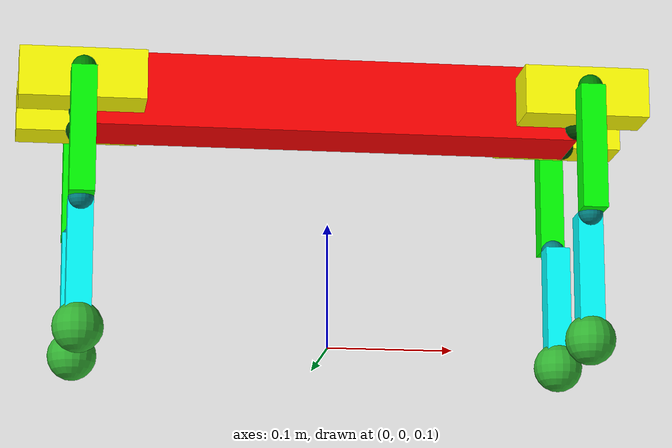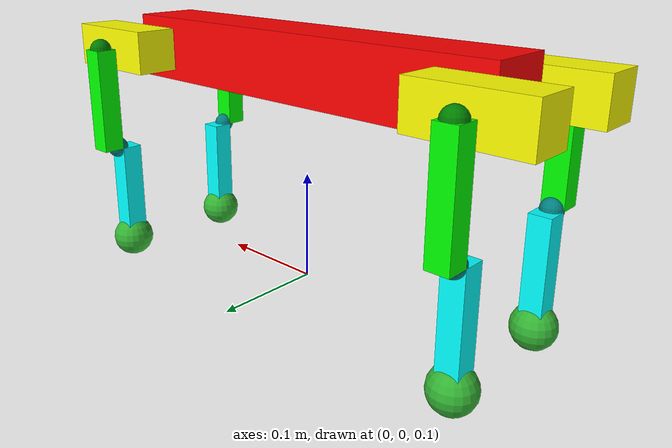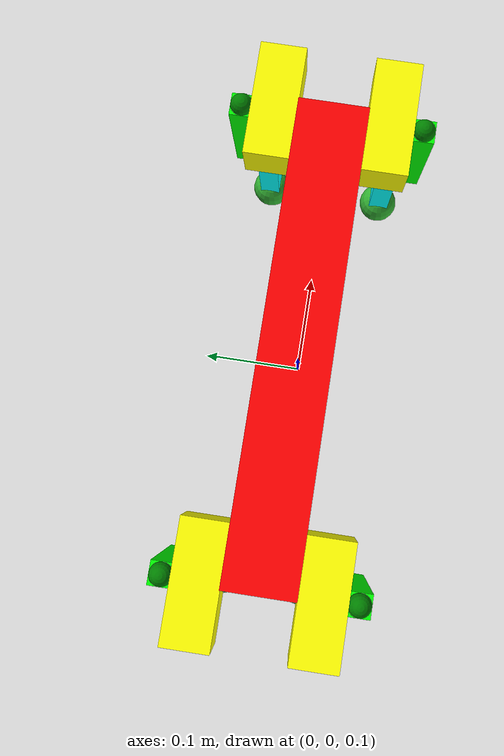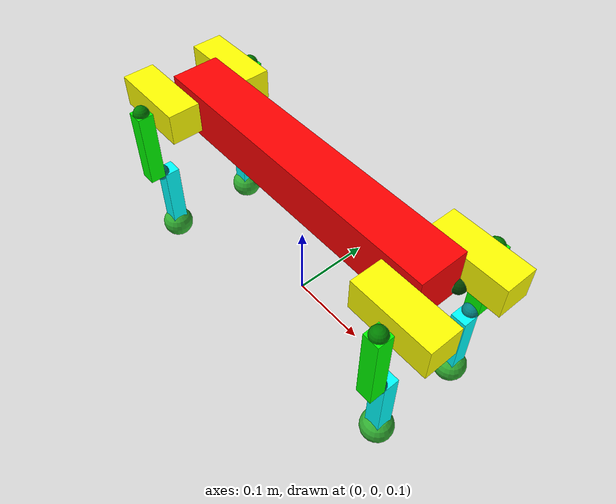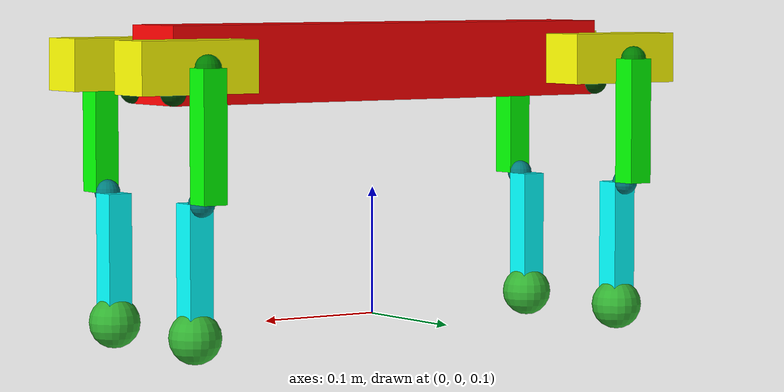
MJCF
<?xml version="1.0" encoding="UTF-8"?>
<mujoco model="snake">
    <compiler angle="degree" />
    <option timestep="0.001"
            gravity="0 0 -9.81" />
    <default>
        <equality solref="0.005 1" />
        <geom type="box"
              size="0.05 0.02 0.02"
              density="500"
              rgba="0.2 0.7 0.2 1" />
        <joint limited="true"
               range="-300 300"
               damping="0.2"
               stiffness="5" />
        <motor ctrllimited="true"
               ctrlrange="-3 3" />
    </default>
    <worldbody>
        <!-- Segment 0 (root body) -->
        <body name="body"
              pos="0 0 0.3">
            <freejoint name="root_free" />
            <geom name="body_geom"
                  type="box"
                  size="0.2 0.03 0.03"
                  pos="0 0 0"
                  rgba="1 0 0 1" />
            <!-- Left Front Shoulder -->
            <body name="shoulder_lf"
                  pos="-0.2 -0.05 0">
                <joint name="lf_upper_shoulder"
                       type="hinge"
                       axis="1 0 0"
                       pos="0 0.02 -0.02" />
                  <site name="u_shoulder_joint_lf"
                          pos="0 0.02 -0.02"
                          size="0.01"
                          rgba="0 0.25 0 1" />
                <geom name="shoulder_lf_geom"
                      type="box"
                      size="0.05 0.02 0.02"
                      pos="0 0 0"
                      rgba="1 1 0 1" />
                <!-- Left Front Upper Leg -->
                <body name="upper_leg_lf"
                      pos="0 -0.03 -0.05">
                    <joint name="lf_lower_shoulder"
                           type="hinge"
                           axis="0 1 0"
                           pos="0 0 0.05" />
                    <site name="shoulder_joint_lf"
                          pos="0 0 0.05"
                          size="0.01"
                          rgba="0 0.5 0 1" />
                    <geom name="upper_leg_lf_geom"
                          type="box"
                          size="0.01 0.01 0.05"
                          pos="0 0 0"
                          rgba="0 1 0 1" />
                    <!-- Left Front Lower Leg -->
                    <body name="lower_leg_lf"
                          pos="0 0.02 -0.10">
                        <joint name="lf_knee"
                               type="hinge"
                               axis="0 1 0"
                               pos="0 -0.01 0.05" />
                        <site name="knee_joint_lf"
                              pos="0 -0.01 0.05"
                              size="0.01"
                              rgba="0 0.5 0.5 1" />
                        <geom name="lower_leg_lf_geom"
                              type="box"
                              size="0.01 0.01 0.05"
                              pos="0 0 0"
                              rgba="0 1 1 1" />
                        <!-- Left front Foot -->
                        <body name="foot_lf"
                              pos="0 0 -0.05">
                            <geom name="foot_lf_geom"
                                  type="sphere"
                                  size="0.02"
                                  pos="0 0 0" />
                        </body>
                    </body>
                </body>
            </body>

            <!-- Right Front Shoulder -->
            <body name="shoulder_rf"
                  pos="-0.2 0.05 0">
                <joint name="rf_upper_shoulder"
                       type="hinge"
                       axis="1 0 0"
                       pos="0 -0.02 -0.02" />
                  <site name="u_shoulder_joint_rf"
                          pos="0 -0.02 -0.02"
                          size="0.01"
                          rgba="0 0.25 0 1" />
                <geom name="shoulder_rf_geom"
                      type="box"
                      size="0.05 0.02 0.02"
                      pos="0 0 0"
                      rgba="1 1 0 1" />
                <!-- Right Front Upper Leg -->
                <body name="upper_leg_rf"
                      pos="0 0.03 -0.05">
                    <joint name="rf_lower_shoulder"
                           type="hinge"
                           axis="0 1 0"
                           pos="0 0 0.05" />
                    <site name="shoulder_joint_rf"
                          pos="0 0 0.05"
                          size="0.01"
                          rgba="0 0.5 0 1" />
                    <geom name="upper_leg_rf_geom"
                          type="box"
                          size="0.01 0.01 0.05"
                          pos="0 0 0"
                          rgba="0 1 0 1" />
                    <!-- Right Front Lower Leg -->
                    <body name="lower_leg_rf"
                          pos="0 -0.02 -0.10">
                        <joint name="rf_knee"
                               type="hinge"
                               axis="0 1 0"
                               pos="0 0.01 0.05" />
                        <site name="knee_joint_rf"
                              pos="0 0.01 0.05"
                              size="0.01"
                              rgba="0 0.5 0.5 1" />
                        <geom name="lower_leg_rf_geom"
                              type="box"
                              size="0.01 0.01 0.05"
                              pos="0 0 0"
                              rgba="0 1 1 1" />
                        <!-- Right Front Foot -->
                        <body name="foot_rf"
                              pos="0 0 -0.05">
                            <geom name="foot_rf_geom"
                                  type="sphere"
                                  size="0.02"
                                  pos="0 0 0" />
                        </body>
                    </body>
                </body>
            </body>

            <!-- Left Back Shoulder -->
            <body name="shoulder_lb"
                  pos="0.2 -0.05 0">
                <joint name="lb_upper_shoulder"
                       type="hinge"
                       axis="1 0 0"
                       pos="0 0.02 -0.02" />
                  <site name="u_shoulder_joint_lb"
                          pos="0 0.02 -0.02"
                          size="0.01"
                          rgba="0 0.25 0 1" />
                <geom name="shoulder_lb_geom"
                      type="box"
                      size="0.05 0.02 0.02"
                      pos="0 0 0"
                      rgba="1 1 0 1" />
                <!-- Left Back Upper Leg -->
                <body name="upper_leg_lb"
                      pos="0 -0.03 -0.05">
                    <joint name="lb_lower_shoulder"
                           type="hinge"
                           axis="0 1 0"
                           pos="0 0 0.05" />
                    <site name="shoulder_joint_lb"
                          pos="0 0 0.05"
                          size="0.01"
                          rgba="0 0.5 0 1" />
                    <geom name="upper_leg_lb_geom"
                          type="box"
                          size="0.01 0.01 0.05"
                          pos="0 0 0"
                          rgba="0 1 0 1" />
                    <!-- Left Back Lower Leg -->
                    <body name="lower_leg_lb"
                          pos="0 0.02 -0.10">
                        <joint name="lb_knee"
                               type="hinge"
                               axis="0 1 0"
                               pos="0 -0.01 0.05" />
                        <site name="knee_joint_lb"
                              pos="0 -0.01 0.05"
                              size="0.01"
                              rgba="0 0.5 0.5 1" />
                        <geom name="lower_leg_lb_geom"
                              type="box"
                              size="0.01 0.01 0.05"
                              pos="0 0 0"
                              rgba="0 1 1 1" />
                        <!-- Left Back Foot -->
                        <body name="foot_lb"
                              pos="0 0 -0.05">
                            <geom name="foot_lb_geom"
                                  type="sphere"
                                  size="0.02"
                                  pos="0 0 0" />
                        </body>
                    </body>
                </body>
            </body>

            <!-- Right Back Shoulder -->
            <body name="shoulder_rb"
                  pos="0.2 0.05 0">
                  <joint name="rb_upper_shoulder"
                       type="hinge"
                       axis="1 0 0"
                       pos="0 -0.02 -0.02" />
                  <site name="u_shoulder_joint_rb"
                          pos="0 -0.02 -0.02"
                          size="0.01"
                          rgba="0 0.25 0 1" />
                <geom name="shoulder_rb_geom"
                      type="box"
                      size="0.05 0.02 0.02"
                      pos="0 0 0"
                      rgba="1 1 0 1" />
                <!-- Right Back Upper Leg -->
                <body name="upper_leg_rb"
                      pos="0 0.03 -0.05">
                    <joint name="rb_lower_shoulder"
                           type="hinge"
                           axis="0 1 0"
                           pos="0 0 0.05" />
                    <site name="shoulder_joint_rb"
                          pos="0 0 0.05"
                          size="0.01"
                          rgba="0 0.5 0 1" />
                    <geom name="upper_leg_rb_geom"
                          type="box"
                          size="0.01 0.01 0.05"
                          pos="0 0 0"
                          rgba="0 1 0 1" />
                    <!-- Right Back Lower Leg -->
                    <body name="lower_leg_rb"
                          pos="0 -0.02 -0.10">
                        <joint name="rb_knee"
                               type="hinge"
                               axis="0 1 0"
                               pos="0 0.01 0.05" />
                        <site name="knee_joint_rb"
                              pos="0 0.01 0.05"
                              size="0.01"
                              rgba="0 0.5 0.5 1" />
                        <geom name="lower_leg_rb_geom"
                              type="box"
                              size="0.01 0.01 0.05"
                              pos="0 0 0"
                              rgba="0 1 1 1" />
                        <!-- Right Back Foot -->
                        <body name="foot_rb"
                              pos="0 0 -0.05">
                            <geom name="foot_rb_geom"
                                  type="sphere"
                                  size="0.02"
                                  pos="0 0 0" />
                        </body>
                    </body>
                </body>
            </body>
        </body>
    </worldbody>

    <actuator>
        <!-- Left Front -->
      <motor name="lf_u_shoulder_motor"
               joint="lf_upper_shoulder"
               forcerange="-20 20" />
        <motor name="lf_l_shoulder_motor"
               joint="lf_lower_shoulder"
               forcerange="-20 20" />
        <motor name="lf_knee_motor"
               joint="lf_knee"
               forcerange="-20 20" />
        <!-- Right Front -->
      <motor name="rf_u_shoulder_motor"
               joint="rf_upper_shoulder"
               forcerange="-20 20" />
        <motor name="rf_l_shoulder_motor"
               joint="rf_lower_shoulder"
               forcerange="-20 20" />
        <motor name="rf_knee_motor"
               joint="rf_knee"
               forcerange="-20 20" />
        <!-- Left Back -->
              <motor name="lb_u_shoulder_motor"
               joint="lb_upper_shoulder"
               forcerange="-20 20" />
        <motor name="lb_l_shoulder_motor"
               joint="lb_lower_shoulder"
               forcerange="-20 20" />
        <motor name="lb_knee_motor"
               joint="lb_knee"
               forcerange="-20 20" />
        <!-- Right Back -->
              <motor name="rb_u_shoulder_motor"
               joint="rb_upper_shoulder"
               forcerange="-20 20" />
        <motor name="rb_l_shoulder_motor"
               joint="rb_lower_shoulder"
               forcerange="-20 20" />
        <motor name="rb_knee_motor"
               joint="rb_knee"
               forcerange="-20 20" />
    </actuator>

    <sensor>
        <jointpos joint="lf_lower_shoulder" />
        <jointpos joint="lf_knee" />
    </sensor>
</mujoco>
